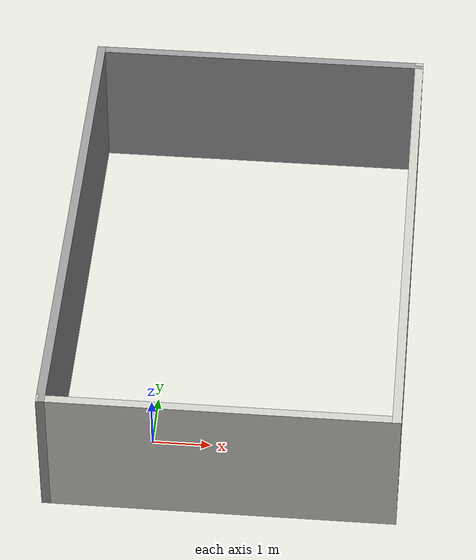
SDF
<?xml version='1.0'?>
<sdf version='1.7'>
  <model name='ViconRoom'>
    <pose>1.265 2.965 0 0 -0 0</pose>
    <link name='Wall_0'>
      <collision name='Wall_0_Collision'>
        <geometry>
          <box>
            <size>9 0.15 2.5</size>
          </box>
        </geometry>
        <pose>0 0 1.25 0 -0 0</pose>
      </collision>
      <visual name='Wall_0_Visual'>
        <pose>0 0 1.25 0 -0 0</pose>
        <geometry>
          <box>
            <size>9 0.15 2.5</size>
          </box>
        </geometry>
        <material>
          <script>
            <uri>file://media/materials/scripts/gazebo.material</uri>
            <name>Gazebo/Grey</name>
          </script>
          <ambient>1 1 1 1</ambient>
        </material>
        <meta>
          <layer>0</layer>
        </meta>
      </visual>
      <pose>-2.925 0 0 0 -0 1.5708</pose>
    </link>
    <link name='Wall_1'>
      <collision name='Wall_1_Collision'>
        <geometry>
          <box>
            <size>6 0.15 2.5</size>
          </box>
        </geometry>
        <pose>0 0 1.25 0 -0 0</pose>
      </collision>
      <visual name='Wall_1_Visual'>
        <pose>0 0 1.25 0 -0 0</pose>
        <geometry>
          <box>
            <size>6 0.15 2.5</size>
          </box>
        </geometry>
        <material>
          <script>
            <uri>file://media/materials/scripts/gazebo.material</uri>
            <name>Gazebo/Grey</name>
          </script>
          <ambient>1 1 1 1</ambient>
        </material>
        <meta>
          <layer>0</layer>
        </meta>
      </visual>
      <pose>-0 4.425 0 0 -0 0</pose>
    </link>
    <link name='Wall_2'>
      <collision name='Wall_2_Collision'>
        <geometry>
          <box>
            <size>9 0.15 2.5</size>
          </box>
        </geometry>
        <pose>0 0 1.25 0 -0 0</pose>
      </collision>
      <visual name='Wall_2_Visual'>
        <pose>0 0 1.25 0 -0 0</pose>
        <geometry>
          <box><include>
      <uri>model://iRobot Create</uri>
      <name>Roomba</name>
      <pose>1 0 0 0 0 0</pose>
    </include>
            <size>9 0.15 2.5</size>
          </box>
        </geometry>
        <material>
          <script>
            <uri>file://media/materials/scripts/gazebo.material</uri>
            <name>Gazebo/CeilingTiled</name>
          </script>
          <ambient>1 1 1 1</ambient>
        </material>
        <meta>
          <layer>0</layer>
        </meta>
      </visual>
      <pose>2.925 0 0 0 -0 -1.5708</pose>
    </link>
    <link name='Wall_3'>
      <collision name='Wall_3_Collision'>
        <geometry>
          <box>
            <size>6 0.15 2.5</size>
          </box>
        </geometry>
        <pose>0 0 1.25 0 -0 0</pose>
      </collision>
      <visual name='Wall_3_Visual'>
        <pose>0 0 1.25 0 -0 0</pose>
        <geometry>
          <box>
            <size>6 0.15 2.5</size>
          </box>
        </geometry>
        <material>
          <script>
            <uri>file://media/materials/scripts/gazebo.material</uri>
            <name>Gazebo/CeilingTiled</name>
          </script>
          <ambient>1 1 1 1</ambient>
        </material>
        <meta>
          <layer>0</layer>
        </meta>
      </visual>
      <pose>-0 -4.425 0 0 -0 3.14159</pose>
    </link>
    <static>1</static>
  </model>

</sdf>
